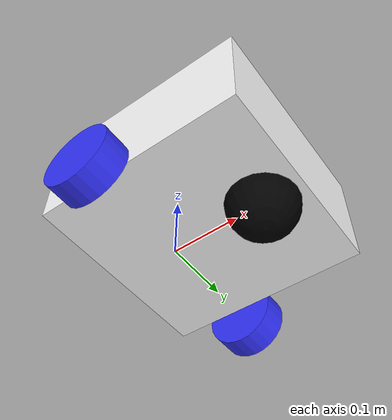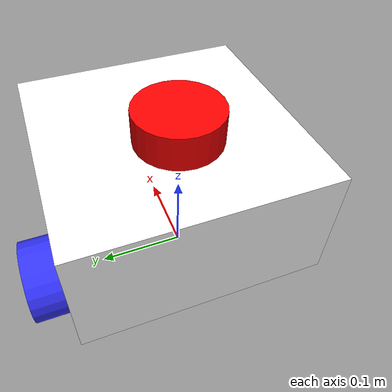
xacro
<?xml version="1.0"?>
<robot xmlns:xacro="http://www.ros.org/wiki/xacro"  name="robot">

    <xacro:arg name="use_ros2_control" default="true"/>
    <xacro:arg name="sim_mode" default="false"/>

    <xacro:include filename="robot_core.xacro" />

    <xacro:if value="$(arg use_ros2_control)">
        <xacro:include filename="ros2_control.xacro"/>
    </xacro:if>
    <xacro:unless value="$(arg use_ros2_control)">
        <xacro:include filename="gazebo_control.xacro"/>
    </xacro:unless>

    <xacro:include filename="lidar.xacro"/>
    <xacro:include filename="camera.xacro"/>

</robot>

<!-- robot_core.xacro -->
<robot xmlns:xacro="http://www.ros.org/wiki/xacro"  >

    <xacro:include filename="inertial_macros.xacro"/>

    <material name="white">
        <color rgba="1 1 1 1"/>
    </material>

    <material name="orange">
        <color rgba="1 0.3 0.1 1"/>
    </material>

    <material name="blue">
        <color rgba="0.2 0.2 1 1"/>
    </material>

    <material name="black">
        <color rgba="0 0 0 1"/>
    </material>

    <material name="red">
        <color rgba="1 0 0 1"/>
    </material>

    <!-- BASE LINK -->

    <link name="base_link">

    </link>

    <!-- BASE FOOTPRINT LINK -->

    <joint name="base_footprint_joint" type="fixed">
        <parent link="base_link"/>
        <child link="base_footprint"/>
        <origin xyz="0 0 0" rpy="0 0 0"/>
    </joint>

    <link name="base_footprint">
    </link>

    <!-- CHASSIS LINK -->

    <joint name="chassis_joint" type="fixed">
        <parent link="base_link"/>
        <child link="chassis"/>
        <origin xyz="-0.1 0 0"/>
    </joint>

    <link name="chassis">
        <visual>
            <origin xyz="0.15 0 0.075"/>
            <geometry>
                <box size="0.3 0.3 0.15"/>
            </geometry>
            <material name="white"/>
        </visual>
        <collision>
            <origin xyz="0.15 0 0.075"/>
            <geometry>
                <box size="0.3 0.3 0.15"/>
            </geometry>
        </collision>
        <xacro:inertial_box mass="0.5" x="0.3" y="0.3" z="0.15">
            <origin xyz="0.15 0 0.075" rpy="0 0 0"/>
        </xacro:inertial_box>
    </link>

    <gazebo reference="chassis">
        <material>Gazebo/Purple</material>
    </gazebo>

    <!-- LEFT WHEEL LINK -->

    <joint name="left_wheel_joint" type="continuous">
        <parent link="base_link"/>
        <child link="left_wheel"/>
        <origin xyz="0 0.175 0" rpy="-${pi/2} 0 0"/>
        <axis xyz="0 0 1"/>
    </joint>

    <link name="left_wheel">
        <visual>
            <geometry>
                <cylinder radius="0.05" length="0.04"/>
            </geometry>
            <material name="blue"/>
        </visual>
        <collision>
            <geometry>
                <sphere radius="0.05"/>
            </geometry>
        </collision>
        <xacro:inertial_cylinder mass="0.1" length="0.04" radius="0.05">
            <origin xyz="0 0 0" rpy="0 0 0"/>
        </xacro:inertial_cylinder>
    </link>

    <gazebo reference="left_wheel">
        <material>Gazebo/Blue</material>
    </gazebo>

    <!-- RIGHT WHEEL LINK -->

    <joint name="right_wheel_joint" type="continuous">
        <parent link="base_link"/>
        <child link="right_wheel"/>
        <origin xyz="0 -0.175 0" rpy="${pi/2} 0 0"/>
        <axis xyz="0 0 -1"/>
    </joint>

    <link name="right_wheel">
        <visual>
            <geometry>
                <cylinder radius="0.05" length="0.04"/>
            </geometry>
            <material name="blue"/>
        </visual>
        <collision>
            <geometry>
                <sphere radius="0.05"/>
            </geometry>
        </collision>
        <xacro:inertial_cylinder mass="0.1" length="0.04" radius="0.05">
            <origin xyz="0 0 0" rpy="0 0 0"/>
        </xacro:inertial_cylinder>
    </link>

    <gazebo reference="right_wheel">
        <material>Gazebo/Blue</material>
    </gazebo>

    <!-- CASTER WHEEL LINK -->

    <joint name="caster_wheel_joint" type="fixed">
        <parent link="chassis"/>
        <child link="caster_wheel"/>
        <origin xyz="0.24 0 0"/>
    </joint>

    <link name="caster_wheel">
        <visual>
            <geometry>
                <sphere radius="0.05"/>
            </geometry>
            <material name="black"/>
        </visual>
        <collision>
            <geometry>
                <sphere radius="0.05"/>
            </geometry>
        </collision>
        <xacro:inertial_sphere mass="0.1" radius="0.05">
            <origin xyz="0 0 0" rpy="0 0 0"/>
        </xacro:inertial_sphere>
    </link>

    <gazebo reference="caster_wheel">
        <material>Gazebo/Black</material>
        <mu1 value="0.001"/>
        <mu2 value="0.001"/>
    </gazebo>

</robot>

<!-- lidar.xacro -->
<robot xmlns:xacro="http://www.ros.org/wiki/xacro"  >

    <joint name="laser_joint" type="fixed">
        <parent link="chassis"/>
        <child link="laser_frame"/>
        <origin xyz="0.100658 0 0.188385" rpy="0 0 0"/>
    </joint>
    <link name="laser_frame">
        <visual>
            <geometry>
                <cylinder radius="0.05" length="0.04"/>
            </geometry>
            <material name="red"/>
        </visual>
        <collision>
            <geometry>
                <cylinder radius="0.05" length="0.04"/>
            </geometry>
        </collision>
        <xacro:inertial_cylinder mass="0.1" length="0.04" radius="0.05">
            <origin xyz="0 0 0" rpy="0 0 0"/>
        </xacro:inertial_cylinder>
    </link>

    <gazebo reference="laser_frame">
        <material>Gazebo/Red</material>
        <sensor name="laser" type="ray">
            <pose> 0 0 0 0 0 0 </pose>
            <visualize>false</visualize>
            <update_rate>10</update_rate>
            <ray>
                <scan>
                    <horizontal>
                        <samples>360</samples>
                        <resolution>1</resolution>
                        <min_angle>-3.14</min_angle>
                        <max_angle>3.14</max_angle>
                    </horizontal>
                </scan>
                <range>
                    <min>0.3</min>
                    <max>12</max>
                    <resolution>0.01</resolution>
                </range>
            </ray>
            <plugin name="laser_controller" filename="libgazebo_ros_ray_sensor.so">
                <ros>
                    <argument>~/out:=scan</argument>
                </ros>
                <output_type>sensor_msgs/LaserScan</output_type>
                <frame_name>laser_frame</frame_name>
            </plugin>

        </sensor>
    </gazebo>

</robot>

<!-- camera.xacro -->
<robot xmlns:xacro="http://www.ros.org/wiki/xacro"  >

    <xacro:property name="camera_length" value="0.0105"/>
    <xacro:property name="camera_width" value="0.05"/>
    <xacro:property name="camera_height" value="0.043"/>

    <joint name="camera_joint" type="fixed">
        <parent link="chassis"/>
        <child link="camera_link"/>
        <origin xyz="${camera_length/2 + 0.25807} 0 ${camera_height/2 + 0.067885}" rpy="0 0 0"/>
    </joint>

    <link name="camera_link">
        <visual>
            <geometry>
                <box size="${camera_length} ${camera_width} ${camera_height}"/>
            </geometry>
            <material name="red"/>
        </visual>
    </link>

    <joint name="camera_optical_joint" type="fixed">
        <parent link="camera_link"/>
        <child link="camera_link_optical"/>
        <origin xyz="0 0 0" rpy="${-pi/2} 0 ${-pi/2}"/>
    </joint>

    <link name="camera_link_optical"></link>

    <gazebo reference="camera_link">
        <material>Gazebo/Red</material>
        <sensor name="camera" type="camera">
            <pose> 0 0 0 0 0 0 </pose>
            <visualize>true</visualize>
            <update_rate>10</update_rate>
            <camera>
                <horizontal_fov>1.089</horizontal_fov>
                <image>
                    <format>R8G8B8</format>
                    <width>640</width>
                    <height>480</height>
                </image>
                <clip>
                    <near>0.05</near>
                    <far>8.0</far>
                </clip>
            </camera>

            <plugin name="camera_controller" filename="libgazebo_ros_camera.so">
                <frame_name>camera_link_optical</frame_name>
            </plugin>

        </sensor>
    </gazebo>

</robot>
